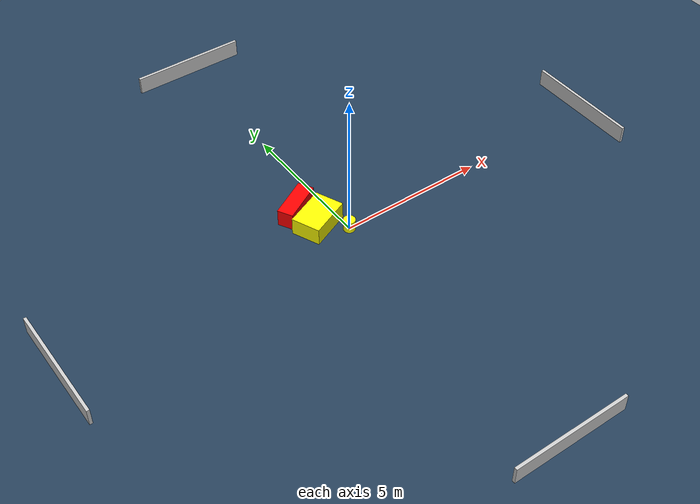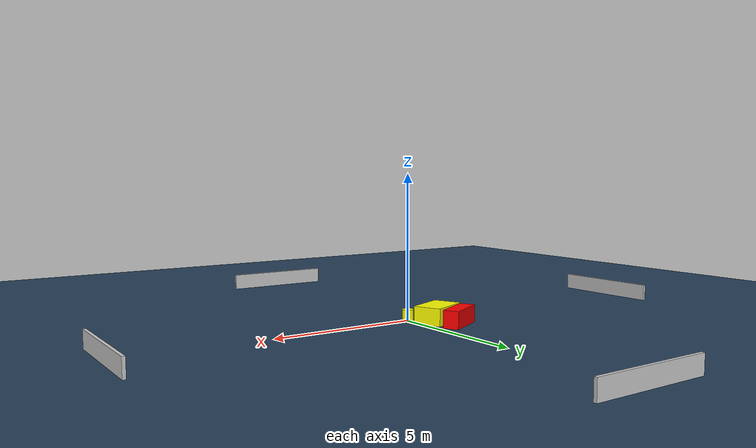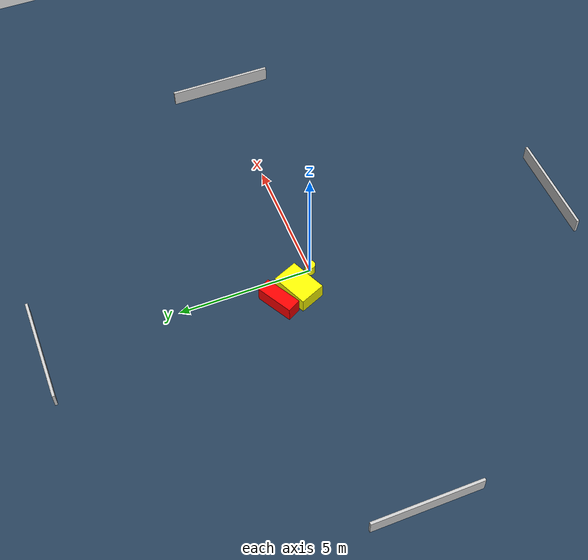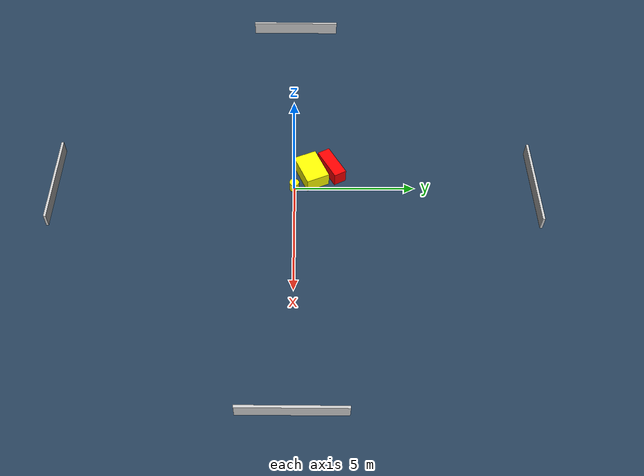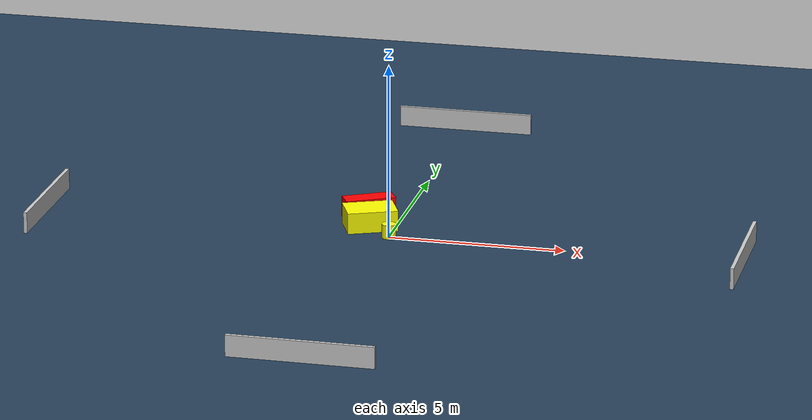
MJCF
<?xml version="1.0" ?>
<mujoco model="generated_environment">
  <option timestep="0.01" integrator="RK4" cone="elliptic"/>
  <default>
    <geom density="1"/>
  </default>
  <asset>
    <texture builtin="gradient" height="3072" name="skybox" rgb1="0.3 0.5 0.7" rgb2="0 0 0" type="skybox" width="512"/>
    <texture builtin="checker" height="300" name="groundplane" rgb1="0.2 0.3 0.4" rgb2="0.1 0.2 0.3" type="2d" width="300"/>
    <material name="groundplane" reflectance="0.2" texrepeat="5 5" texture="groundplane"/>
  </asset>
  <worldbody>
    <light dir="0 0 -1" directional="true" pos="0 0 1.5"/>
    <geom condim="3" friction="0.5 0.005 0.001" material="groundplane" name="floor" pos="0 0 0" size="0 0 0.05" type="plane"/>
    <body name="walls">
      <geom name="wall_1" condim="4" pos="-10.0 0.0 0.3" rgba="0.800000011920929 0.800000011920929 0.800000011920929 1.0" size="0.05 2.0 0.3" type="box"/>
      <geom name="wall_2" condim="4" pos="10.0 0.0 0.3" rgba="0.800000011920929 0.800000011920929 0.800000011920929 1.0" size="0.05 2.0 0.3" type="box"/>
      <geom name="wall_3" condim="4" pos="0.0 -10.0 0.3" rgba="0.800000011920929 0.800000011920929 0.800000011920929 1.0" size="2.0 0.05 0.3" type="box"/>
      <geom name="wall_4" condim="4" pos="0.0 10.0 0.3" rgba="0.800000011920929 0.800000011920929 0.800000011920929 1.0" size="2.0 0.05 0.3" type="box"/>
    </body>
    <body name="robot">
      <joint name="joint_x" type="slide" pos="0 0 0" axis="1 0 0"/>
      <joint name="joint_y" type="slide" pos="0 0 0" axis="0 1 0"/>
      <geom name="robot" type="cylinder" pos="0.0 0.0 0.2" size="0.2 0.2 0.0" mass="5.0" friction="1.0 0.005 0.0001" condim="4" rgba="1.0 1.0 0.0 1.0"/>
    </body>
    <body name="obstacle_1_movable">
      <geom name="obstacle_1_movable" condim="4" pos="-0.7146506002549461 0.7162175362074432 0.3" euler="0 0 23.34357557840946" friction="0.0 0.005 0.001" rgba="1.0 1.0 0.0 1.0" size="0.7177489968575845 0.4928734858850721 0.3" type="box" mass="0.1"/>
      <joint type="free"/>
    </body>
    <body name="obstacle_2_static">
      <geom name="obstacle_2_static" condim="4" pos="-0.9617066063996909 1.5793713048416105 0.3" euler="0 0 118.6789625055986" friction="0.0 0.005 0.001" rgba="1.0 0.0 0.0 1.0" size="0.2685860030206737 0.72257007096455 0.3" type="box"/>
    </body>
  </worldbody>
  <actuator>
    <motor name="actuator_x" joint="joint_x" gear="1" ctrlrange="-1 1"/>
    <motor name="actuator_y" joint="joint_y" gear="1" ctrlrange="-1 1"/>
  </actuator>
</mujoco>
